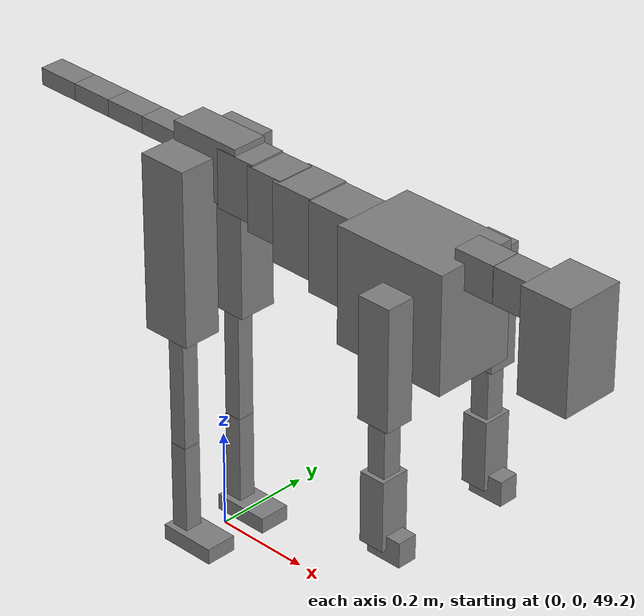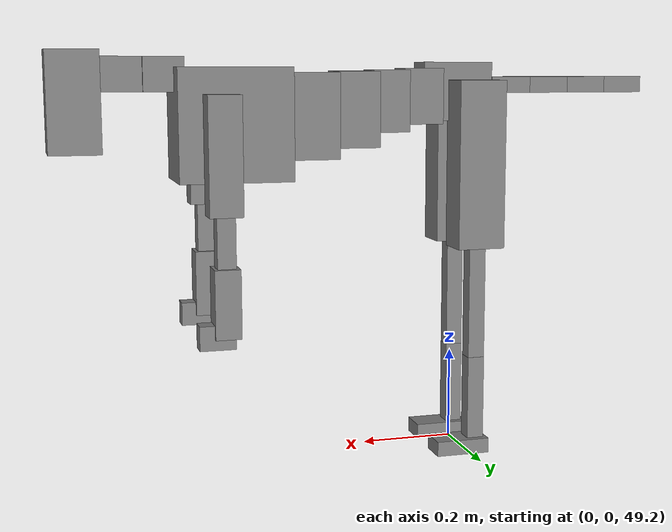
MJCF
<mujoco model="dog">

    <default>
        <joint armature="0.02" stiffness="1" damping="0.2" limited="true"/>
        <geom condim="3" friction="1 0.05 0.05" margin="0.01"/>
        <motor ctrllimited="true" ctrlrange="-1.0 1.0" forcelimited="true" gear="50"/>
    </default>

    <compiler inertiafromgeom="true" angle="radian"/>

    <option timestep="0.016" iterations="50" tolerance="1e-10" solver="Newton" jacobian="dense" cone="pyramidal"/>

    <size nconmax="20000" njmax="60000" nstack="5000000"/>
    <visual>
        <map force="0.1" zfar="30"/>
        <rgba haze="0.15 0.25 0.35 1"/>
        <quality shadowsize="2048"/>
        <global offwidth="800" offheight="800"/>
    </visual>

    <asset>
        <texture type="skybox" builtin="gradient" rgb1="0.3 0.5 0.7" rgb2="0 0 0" width="512" height="512"/>
        <texture name="texplane" type="2d" builtin="checker" rgb1=".2 .3 .4" rgb2=".1 0.15 0.2" width="512" height="512"
                 mark="cross" markrgb=".8 .8 .8"/>
        <texture name="texgeom" type="cube" builtin="flat" mark="cross" width="127" height="1278" rgb1="0.8 0.6 0.4"
                 rgb2="0.8 0.6 0.4" markrgb="1 1 1" random="0.01"/>

        <material name="matplane" reflectance="0.3" texture="texplane" texrepeat="1 1" texuniform="true"/>
        <material name="matgeom" texture="texgeom" texuniform="true" rgba="0.8 0.6 .4 1"/>
    </asset>

    <worldbody>
        <geom name="floor" pos="0 0 0" size="0 0 .25" type="plane" material="matplane" condim="3"/>

        <light directional="false" diffuse=".2 .2 .2" specular="0 0 0" pos="0 0 5" dir="0 0 -1" castshadow="false"/>
        <light mode="targetbodycom" target="torso" directional="false" diffuse=".8 .8 .8" specular="0.3 0.3 0.3"
               pos="0 0 4.0" dir="0 0 -1"/>

        <body name="root" pos="0 0 50">
            <freejoint name="root_1"/>
            <geom type="box" pos="0 0 -0.02" size="0.0774  0.0358  0.063" density="2030"/>

            <body name="spine1" pos="0.054 0 0">
                <joint name="spine1_y" axis="0 1 0" range="0 0.7" limited="true"/>
                <geom type="box" pos="0.02375 0 -0.03" size="0.04375  0.0375  0.05985" density="2030"/>

                <body name="spine2" pos="0.0612 0 0">
                    <joint name="spine2_y" axis="0 1 0" range="-0.15 0.15" limited="true"/>
                    <geom type="box" pos="0.03555  0  -0.04" size="0.04055  0.039  0.06615" density="2030"/>

                    <body name="spine3" pos="0.0730 0 0">
                        <joint name="spine3_y" axis="0 1 0" range="-0.15 0.15" limited="true"/>
                        <geom type="box" pos="0.03555  0  -0.057" size="0.04555  0.0445  0.081" density="2030"/>

                        <body name="spine4" pos="0.0780 0 0">
                            <joint name="spine4_y" axis="0 1 0" range="-0.15 0.15" limited="true"/>
                            <geom type="box" pos="0.05265  0  -0.07" size="0.05265  0.045  0.09135" density="2030"/>

                            <body name="torso" pos="0.1082 0 0">
                                <joint name="torso_y" axis="0 1 0" range="-0.15 0.15" limited="true"/>
                                <geom type="box" pos="0.11925  0  -0.085" size="0.11925  0.085  0.11745"
                                      density="2030"/>

                                <body name="neck1" pos="0.2160  0   0.0180">
                                    <joint name="neck1_y" axis="0 1 0" range="-1.2  -1" limited="true"/>
                                    <geom type="box" pos="0.0423  0  0" size="0.0423  0.03  0.036" density="2325"/>

                                    <body name="neck2" pos="0.0853  0  0">
                                        <joint name="neck2_y" axis="0 1 0" range="0.1  0" limited="true"/>
                                        <geom type="box" pos="0.0423  0  0" size="0.0423  0.03  0.036" density="2325"/>

                                        <body name="head" pos="0.0853  0  0">
                                            <joint name="head_y" axis="0 1 0" range="-0.3  -0.2" limited="true"/>
                                            <geom type="box" pos="0.0531  0  -0.055" size="0.0531  0.06  0.1044"
                                                  density="4030"/>

                                        </body>
                                    </body>
                                </body>

                                <body name="front_shoulder" pos="0.156  0   -0.0480">
                                    <joint name="front_shoulder_y" axis="0 1 0" range="-1 1.5" limited="true"/>
                                    <geom type="box" pos="0 0.13 -0.0946" size="0.0345  0.0295  0.1213" density="1158"/>
                                    <geom type="box" pos="0 -0.13 -0.0946" size="0.0345  0.0295  0.1213"
                                          density="1158"/>

                                    <body name="front_elbow" pos="0  0  -0.1892">
                                        <joint name="front_elbow_y" axis="0 1 0" range="-2 0" limited="true"/>
                                        <geom type="box" pos="0 0.13 -0.0721" size="0.0192  0.0196  0.0721"
                                              density="1081"/>
                                        <geom type="box" pos="0 -0.13 -0.0721" size="0.0192  0.0196  0.0721"
                                              density="1081"/>

                                        <body name="front_wrist" pos="0  0  -0.1442">
                                            <joint name="front_wrist_y" axis="0 1 0" range="-0.2 0" limited="true"/>
                                            <geom type="box" pos="0 0.13 -0.0580" size="0.0268  0.0298  0.0712"
                                                  density="1664"/>
                                            <geom type="box" pos="0 -0.13 -0.0580" size="0.0268  0.0298  0.0712"
                                                  density="1664"/>

                                            <body name="front_finger_end" pos="0  0  -0.1160">
                                                <joint name="front_finger_y" axis="0 1 0" range="-0.4 1"
                                                       limited="true"/>
                                                <geom type="box" pos="0.0204  0.13  -0.0103"
                                                      size="0.0374  0.0204  0.0253" density="1515"/>
                                                <geom type="box" pos="0.0204  -0.13  -0.0103"
                                                      size="0.0374  0.0204  0.0253" density="1515"/>

                                            </body>

                                        </body>
                                    </body>
                                </body>

                            </body>
                        </body>
                    </body>
                </body>
            </body>

            <body name="back_hip" pos="-0.03 0 -0.018">
                <joint name="back_hip_y" axis="0 1 0" range="-1.5 0.3" limited="true"/>
                <geom type="box" pos="0 0.07 -0.1575" size="0.0518  0.0407  0.1803" density="1154"/>
                <geom type="box" pos="0 -0.07 -0.1575" size="0.0518  0.0407  0.1803" density="1154"/>

                <body name="back_knee" pos="0  0  -0.3149">
                    <joint name="back_knee_y" axis="0 1 0" range="0 2.8" limited="true"/>
                    <geom type="box" pos="0 0.07 -0.1390" size="0.0182  0.0180  0.1545" density="1227"/>
                    <geom type="box" pos="0 -0.07 -0.1390" size="0.0182  0.0180  0.1545" density="1227"/>

                    <body name="back_ankle" pos="0  0  -0.2780">
                        <joint name="back_ankle_y" axis="0 1 0" range="-2.2 0" limited="true"/>
                        <geom type="box" pos="0 0.07 -0.0933" size="0.0184  0.0184  0.1045" density="1284"/>
                        <geom type="box" pos="0 -0.07 -0.0933" size="0.0184  0.0184  0.1045" density="1284"/>

                        <body name="back_toe_end" pos="0  0  -0.1865">
                            <joint name="back_toe_y" axis="0 1 0" range="-0.4 1" limited="true"/>
                            <geom type="box" pos="0.0324  0.07  -0.0012" size="0.0594  0.0324  0.0162" density="1515"/>
                            <geom type="box" pos="0.0324  -0.07  -0.0012" size="0.0594  0.0324  0.0162" density="1515"/>

                        </body>
                    </body>
                </body>
            </body>

            <body name="tail1" pos="-0.074 0 -0.006">
                <joint name="tail1_y" axis="0 1 0" range="-0.2 0.2" limited="true"/>
                <geom type="box" pos="-0.0536  0  0" size="0.045  0.025  0.0175" density="1587"/>

                <body name="tail2" pos="-0.09 0 0">
                    <joint name="tail2_y" axis="0 1 0" range="-0.2 0.2" limited="true"/>
                    <geom type="box" pos="-0.0536  0  0" size="0.045  0.025  0.0175" density="1587"/>

                    <body name="tail3" pos="-0.09 0 0">
                        <joint name="tail3_y" axis="0 1 0" range="-0.2 0.2" limited="true"/>
                        <geom type="box" pos="-0.0536  0  0" size="0.045  0.025  0.0175" density="1587"/>

                        <body name="tail4" pos="-0.09 0 0">
                            <joint name="tail4_y" axis="0 1 0" range="-0.2 0.2" limited="true"/>
                            <geom type="box" pos="-0.0536  0  0" size="0.045  0.025  0.0175" density="1587"/>

                        </body>
                    </body>
                </body>
            </body>
        </body>
    </worldbody>

    <actuator>
        <motor joint="spine1_y" forcerange="-150 150     "/>
        <motor joint="spine2_y" forcerange="-150 150     "/>
        <motor joint="spine3_y" forcerange="-150 150     "/>
        <motor joint="spine4_y" forcerange="-150 150     "/>
        <motor joint="torso_y" forcerange="-150 150     "/>
        <motor joint="neck1_y" forcerange="-100 100       "/>
        <motor joint="neck2_y" forcerange="-100 100       "/>
        <motor joint="head_y" forcerange="-150 150       "/>
        <motor joint="front_shoulder_y" forcerange="-158.39 138.02"/>
        <motor joint="front_elbow_y" forcerange="-112.61 130.12"/>
        <motor joint="front_wrist_y" forcerange="-143.68 94.76"/>
        <motor joint="front_finger_y" forcerange="-23.11 45.71"/>
        <motor joint="back_hip_y" forcerange="-349.00 393.10"/>
        <motor joint="back_knee_y" forcerange="-255.80 205.81"/>
        <motor joint="back_angle_y" forcerange="-79.21 115.72"/>
        <motor joint="back_toe_y" forcerange="-106.54 72.72"/>
        <motor joint="tail1_y" forcerange="-50 50     "/>
        <motor joint="tail2_y" forcerange="-50 50     "/>
        <motor joint="tail3_y" forcerange="-50 50     "/>
        <motor joint="tail4_y" forcerange="-50 50     "/>
    </actuator>
</mujoco>
